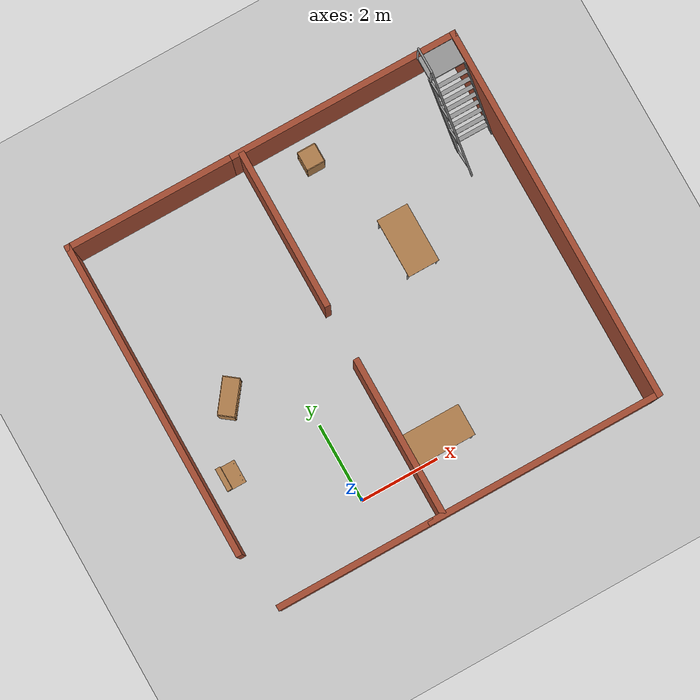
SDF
<sdf version="1.7">
 <world name="default">
  <light name="sun" type="directional">
   <pose>0 0 10 0 -0 0</pose>
   <diffuse>0.8 0.8 0.8 1</diffuse>
   <specular>0.2 0.2 0.2 1</specular>
   <attenuation>
    <range>1000</range>
    <constant>0.9</constant>
    <linear>0.01</linear>
    <quadratic>0.001</quadratic>
   </attenuation>
   <direction>-0.5 0.1 -0.9</direction>
   <spot><inner_angle>0</inner_angle><outer_angle>0</outer_angle><falloff>0</falloff></spot>
  </light>
  <model name="ground_plane">
   <static>1</static>
   <link name="link">
    <collision name="collision">
     <geometry><plane><normal>0 0 1</normal><size>100 100</size></plane></geometry>
     <surface>
      <contact><collide_bitmask>65535</collide_bitmask></contact>
      <friction><ode><mu>100</mu><mu2>50</mu2></ode></friction>
     </surface>
    </collision>
    <visual name="visual">
     <cast_shadows>0</cast_shadows>
     <geometry><plane><normal>0 0 1</normal><size>100 100</size></plane></geometry>
     <material>
      <script><uri>file://media/materials/scripts/gazebo.material</uri><name>Gazebo/Grey</name></script>
     </material>
    </visual>
   </link>
  </model>
  <gravity>0 0 -9.8</gravity>
  <magnetic_field>6e-06 2.3e-05 -4.2e-05</magnetic_field>
  <atmosphere type="adiabatic"/>
  <physics type="ode">
   <max_step_size>0.001</max_step_size>
   <real_time_factor>1</real_time_factor>
   <real_time_update_rate>1000</real_time_update_rate>
  </physics>
  <scene><ambient>0.4 0.4 0.4 1</ambient><background>0.7 0.7 0.7 1</background><shadows>1</shadows></scene>
  <spherical_coordinates>
   <surface_model>EARTH_WGS84</surface_model>
   <latitude_deg>0</latitude_deg>
   <longitude_deg>0</longitude_deg>
   <elevation>0</elevation>
   <heading_deg>0</heading_deg>
  </spherical_coordinates>
  <model name="base">
   <pose>1.955 3.445 0 0 -0 0</pose>
   <link name="Wall_10">
    <collision name="Wall_10_Collision">
     <geometry><box><size>6 0.15 2.5</size></box></geometry>
     <pose>0 0 1.25 0 -0 0</pose>
    </collision>
    <visual name="Wall_10_Visual">
     <pose>0 0 1.25 0 -0 0</pose>
     <geometry><box><size>6 0.15 2.5</size></box></geometry>
     <material>
      <script><uri>file://media/materials/scripts/gazebo.material</uri><name>Gazebo/Bricks</name></script>
      <ambient>1 1 1 1</ambient>
     </material>
     <meta><layer>0</layer></meta>
    </visual>
    <pose>2.05 -4.675 0 0 -0 0</pose>
   </link>
   <link name="Wall_11">
    <collision name="Wall_11_Collision">
     <geometry><box><size>9.5 0.15 2.5</size></box></geometry>
     <pose>0 0 1.25 0 -0 0</pose>
    </collision>
    <visual name="Wall_11_Visual">
     <pose>0 0 1.25 0 -0 0</pose>
     <geometry><box><size>9.5 0.15 2.5</size></box></geometry>
     <material>
      <script><uri>file://media/materials/scripts/gazebo.material</uri><name>Gazebo/Bricks</name></script>
      <ambient>1 1 1 1</ambient>
     </material>
     <meta><layer>0</layer></meta>
    </visual>
    <pose>4.975 -0 0 0 -0 1.5708</pose>
   </link>
   <link name="Wall_12">
    <collision name="Wall_12_Collision">
     <geometry><box><size>6 0.15 2.5</size></box></geometry>
     <pose>0 0 1.25 0 -0 0</pose>
    </collision>
    <visual name="Wall_12_Visual">
     <pose>0 0 1.25 0 -0 0</pose>
     <geometry><box><size>6 0.15 2.5</size></box></geometry>
     <material>
      <script><uri>file://media/materials/scripts/gazebo.material</uri><name>Gazebo/Bricks</name></script>
      <ambient>1 1 1 1</ambient>
     </material>
     <meta><layer>0</layer></meta>
    </visual>
    <pose>2.05 4.675 0 0 -0 3.14159</pose>
   </link>
   <link name="Wall_14">
    <collision name="Wall_14_Collision">
     <geometry><box><size>4.25 0.15 2.5</size></box></geometry>
     <pose>0 0 1.25 0 -0 0</pose>
    </collision>
    <visual name="Wall_14_Visual">
     <pose>0 0 1.25 0 -0 0</pose>
     <geometry><box><size>4.25 0.15 2.5</size></box></geometry>
     <material>
      <script><uri>file://media/materials/scripts/gazebo.material</uri><name>Gazebo/Bricks</name></script>
      <ambient>1 1 1 1</ambient>
     </material>
     <meta><layer>0</layer></meta>
    </visual>
    <pose>-2.925 4.675 0 0 -0 3.14159</pose>
   </link>
   <link name="Wall_15">
    <collision name="Wall_15_Collision">
     <geometry><box><size>8 0.15 2.5</size></box></geometry>
     <pose>0 0 1.25 0 -0 0</pose>
    </collision>
    <visual name="Wall_15_Visual">
     <pose>0 0 1.25 0 -0 0</pose>
     <geometry><box><size>8 0.15 2.5</size></box></geometry>
     <material>
      <script><uri>file://media/materials/scripts/gazebo.material</uri><name>Gazebo/Bricks</name></script>
      <ambient>1 1 1 1</ambient>
     </material>
     <meta><layer>0</layer></meta>
    </visual>
    <pose>-4.975 0.75 0 0 -0 -1.5708</pose>
   </link>
   <link name="Wall_17">
    <collision name="Wall_17_Collision">
     <geometry><box><size>4 0.15 2.5</size></box></geometry>
     <pose>0 0 1.25 0 -0 0</pose>
    </collision>
    <visual name="Wall_17_Visual">
     <pose>0 0 1.25 0 -0 0</pose>
     <geometry><box><size>4 0.15 2.5</size></box></geometry>
     <material>
      <script><uri>file://media/materials/scripts/gazebo.material</uri><name>Gazebo/Bricks</name></script>
      <ambient>1 1 1 1</ambient>
     </material>
     <meta><layer>0</layer></meta>
    </visual>
    <pose>-0.5297 2.66568 0 0 -0 1.5708</pose>
   </link>
   <link name="Wall_5">
    <collision name="Wall_5_Collision">
     <geometry><box><size>4 0.15 2.5</size></box></geometry>
     <pose>0 0 1.25 0 -0 0</pose>
    </collision>
    <visual name="Wall_5_Visual">
     <pose>0 0 1.25 0 -0 0</pose>
     <geometry><box><size>4 0.15 2.5</size></box></geometry>
     <material>
      <script><uri>file://media/materials/scripts/gazebo.material</uri><name>Gazebo/Bricks</name></script>
      <ambient>1 1 1 1</ambient>
     </material>
     <meta><layer>0</layer></meta>
    </visual>
    <pose>-2.8 -4.675 0 0 -0 3.14159</pose>
   </link>
   <link name="Wall_8">
    <collision name="Wall_8_Collision">
     <geometry><box><size>4 0.15 2.5</size></box></geometry>
     <pose>0 0 1.25 0 -0 0</pose>
    </collision>
    <visual name="Wall_8_Visual">
     <pose>0 0 1.25 0 -0 0</pose>
     <geometry><box><size>4 0.15 2.5</size></box></geometry>
     <material>
      <script><uri>file://media/materials/scripts/gazebo.material</uri><name>Gazebo/Bricks</name></script>
      <ambient>1 1 1 1</ambient>
     </material>
     <meta><layer>0</layer></meta>
    </visual>
    <pose>-0.5527 -2.67032 0 0 -0 1.5708</pose>
   </link>
   <static>1</static>
  </model>
  <model name="cabinet">
   <static>1</static>
   <link name="cabinet_bottom_plate">
    <inertial>
     <pose>0 0 -1 0 -0 0</pose>
     <inertia><ixx>2.05</ixx><ixy>0</ixy><ixz>0</ixz><iyy>2.05</iyy><iyz>0</iyz><izz>2.05</izz></inertia>
     <mass>25</mass>
    </inertial>
    <collision name="cabinet_bottom_plate_geom">
     <pose>0 0 0.01 0 -0 0</pose>
     <geometry><box><size>0.45 0.45 0.02</size></box></geometry>
    </collision>
    <visual name="cabinet_bottom_plate_geom_visual">
     <pose>0 0 0.01 0 -0 0</pose>
     <geometry><box><size>0.45 0.45 0.02</size></box></geometry>
     <material>
      <script><uri>file://media/materials/scripts/gazebo.material</uri><name>Gazebo/Wood</name></script>
     </material>
    </visual>
    <collision name="cabinet_bottom_plate_geom_cabinet_back_plate">
     <pose>0.235 0 0.51 0 -0 0</pose>
     <geometry><box><size>0.02 0.45 1.02</size></box></geometry>
    </collision>
    <visual name="cabinet_bottom_plate_geom_cabinet_back_plate_visual">
     <pose>0.235 0 0.51 0 -0 0</pose>
     <geometry><box><size>0.02 0.45 1.02</size></box></geometry>
     <material>
      <script><uri>file://media/materials/scripts/gazebo.material</uri><name>Gazebo/Wood</name></script>
     </material>
    </visual>
    <collision name="cabinet_bottom_plate_geom_cabinet_left_plate">
     <pose>0 0.235 0.51 0 -0 0</pose>
     <geometry><box><size>0.45 0.02 1.02</size></box></geometry>
    </collision>
    <visual name="cabinet_bottom_plate_geom_cabinet_left_plate_visual">
     <pose>0 0.235 0.51 0 -0 0</pose>
     <geometry><box><size>0.45 0.02 1.02</size></box></geometry>
     <material>
      <script><uri>file://media/materials/scripts/gazebo.material</uri><name>Gazebo/Wood</name></script>
     </material>
    </visual>
    <collision name="cabinet_bottom_plate_geom_cabinet_middle_plate">
     <pose>0 0 0.51 0 -0 0</pose>
     <geometry><box><size>0.45 0.45 0.02</size></box></geometry>
    </collision>
    <visual name="cabinet_bottom_plate_geom_cabinet_middle_plate_visual">
     <pose>0 0 0.51 0 -0 0</pose>
     <geometry><box><size>0.45 0.45 0.02</size></box></geometry>
     <material>
      <script><uri>file://media/materials/scripts/gazebo.material</uri><name>Gazebo/Wood</name></script>
     </material>
    </visual>
    <collision name="cabinet_bottom_plate_geom_cabinet_right_plate">
     <pose>0 -0.235 0.51 0 -0 0</pose>
     <geometry><box><size>0.45 0.02 1.02</size></box></geometry>
    </collision>
    <visual name="cabinet_bottom_plate_geom_cabinet_right_plate_visual">
     <pose>0 -0.235 0.51 0 -0 0</pose>
     <geometry><box><size>0.45 0.02 1.02</size></box></geometry>
     <material>
      <script><uri>file://media/materials/scripts/gazebo.material</uri><name>Gazebo/Wood</name></script>
     </material>
    </visual>
    <collision name="cabinet_bottom_plate_geom_cabinet_top_plate">
     <pose>0 0 1.01 0 -0 0</pose>
     <geometry><box><size>0.45 0.45 0.02</size></box></geometry>
    </collision>
    <visual name="cabinet_bottom_plate_geom_cabinet_top_plate_visual">
     <pose>0 0 1.01 0 -0 0</pose>
     <geometry><box><size>0.45 0.45 0.02</size></box></geometry>
     <material>
      <script><uri>file://media/materials/scripts/gazebo.material</uri><name>Gazebo/Wood</name></script>
     </material>
    </visual>
   </link>
   <pose>2.82724 7.44683 0 0 -0 0</pose>
  </model>
  <model name="wooden_case">
   <link name="base">
    <pose>0 0 0.024 0 -0 0</pose>
    <inertial>
     <pose>-0.022184 0 0.171592 0 -0 0</pose>
     <mass>3.96264</mass>
     <inertia>
      <ixx>0.213536</ixx>
      <ixy>0</ixy>
      <ixz>0.000779377</ixz>
      <iyy>0.0708943</iyy>
      <iyz>0</iyz>
      <izz>0.154604</izz>
     </inertia>
    </inertial>
    <collision name="collision_back">
     <pose>-0.053975 0 0.1778 0 -0 0</pose>
     <geometry><box><size>0.01905 0.5461 0.3175</size></box></geometry>
     <surface>
      <contact>
       <poissons_ratio>0.347</poissons_ratio>
       <elastic_modulus>8.8e+09</elastic_modulus>
       <ode><kp>100000</kp><kd>100</kd><max_vel>100</max_vel><min_depth>0.001</min_depth></ode>
      </contact>
      <friction>
       <torsional>
        <coefficient>1</coefficient>
        <use_patch_radius>0</use_patch_radius>
        <surface_radius>0.01</surface_radius>
       </torsional>
      </friction>
     </surface>
    </collision>
    <visual name="visual_back">
     <pose>-0.053975 0 0.1778 0 -0 0</pose>
     <geometry><box><size>0.01905 0.5461 0.3175</size></box></geometry>
     <material>
      <script><uri>file://media/materials/scripts/gazebo.material</uri><name>Gazebo/Wood</name></script>
     </material>
    </visual>
    <collision name="collision_bottom">
     <pose>0 0 0.009525 0 -0 0</pose>
     <geometry><box><size>0.127 0.5842 0.01905</size></box></geometry>
     <surface>
      <contact>
       <poissons_ratio>0.347</poissons_ratio>
       <elastic_modulus>8.8e+09</elastic_modulus>
       <ode><kp>100000</kp><kd>100</kd><max_vel>100</max_vel><min_depth>0.001</min_depth></ode>
      </contact>
      <friction>
       <torsional>
        <coefficient>1</coefficient>
        <use_patch_radius>0</use_patch_radius>
        <surface_radius>0.01</surface_radius>
       </torsional>
      </friction>
     </surface>
    </collision>
    <visual name="visual_bottom">
     <pose>0 0 0.009525 0 -0 0</pose>
     <geometry><box><size>0.127 0.5842 0.01905</size></box></geometry>
     <material>
      <script><uri>file://media/materials/scripts/gazebo.material</uri><name>Gazebo/Wood</name></script>
     </material>
    </visual>
    <collision name="collision_top">
     <pose>0 0 0.346075 0 -0 0</pose>
     <geometry><box><size>0.127 0.5842 0.01905</size></box></geometry>
     <surface>
      <contact>
       <poissons_ratio>0.347</poissons_ratio>
       <elastic_modulus>8.8e+09</elastic_modulus>
       <ode><kp>100000</kp><kd>100</kd><max_vel>100</max_vel><min_depth>0.001</min_depth></ode>
      </contact>
      <friction>
       <torsional>
        <coefficient>1</coefficient>
        <use_patch_radius>0</use_patch_radius>
        <surface_radius>0.01</surface_radius>
       </torsional>
      </friction>
     </surface>
    </collision>
    <visual name="visual_top">
     <pose>0 0 0.346075 0 -0 0</pose>
     <geometry><box><size>0.127 0.5842 0.01905</size></box></geometry>
     <material>
      <script><uri>file://media/materials/scripts/gazebo.material</uri><name>Gazebo/Wood</name></script>
     </material>
    </visual>
    <collision name="collision_left">
     <pose>0 -0.282575 0.1778 0 -0 0</pose>
     <geometry><box><size>0.127 0.01905 0.3175</size></box></geometry>
     <surface>
      <contact>
       <poissons_ratio>0.347</poissons_ratio>
       <elastic_modulus>8.8e+09</elastic_modulus>
       <ode><kp>100000</kp><kd>100</kd><max_vel>100</max_vel><min_depth>0.001</min_depth></ode>
      </contact>
      <friction>
       <torsional>
        <coefficient>1</coefficient>
        <use_patch_radius>0</use_patch_radius>
        <surface_radius>0.01</surface_radius>
       </torsional>
      </friction>
     </surface>
    </collision>
    <visual name="visual_left">
     <pose>0 -0.282575 0.1778 0 -0 0</pose>
     <geometry><box><size>0.127 0.01905 0.3175</size></box></geometry>
     <material>
      <script><uri>file://media/materials/scripts/gazebo.material</uri><name>Gazebo/Wood</name></script>
     </material>
    </visual>
    <collision name="collision_right">
     <pose>0 0.282575 0.1778 0 -0 0</pose>
     <geometry><box><size>0.127 0.01905 0.3175</size></box></geometry>
     <surface>
      <contact>
       <poissons_ratio>0.347</poissons_ratio>
       <elastic_modulus>8.8e+09</elastic_modulus>
       <ode><kp>100000</kp><kd>100</kd><max_vel>100</max_vel><min_depth>0.001</min_depth></ode>
      </contact>
      <friction>
       <torsional>
        <coefficient>1</coefficient>
        <use_patch_radius>0</use_patch_radius>
        <surface_radius>0.01</surface_radius>
       </torsional>
      </friction>
     </surface>
    </collision>
    <visual name="visual_right">
     <pose>0 0.282575 0.1778 0 -0 0</pose>
     <geometry><box><size>0.127 0.01905 0.3175</size></box></geometry>
     <material>
      <script><uri>file://media/materials/scripts/gazebo.material</uri><name>Gazebo/Wood</name></script>
     </material>
    </visual>
    <collision name="collision_block_left">
     <pose>0.0095 -0.2151 -0.012 0 -0 0</pose>
     <geometry><box><size>0.108 0.05 0.024</size></box></geometry>
     <surface>
      <contact>
       <poissons_ratio>0.347</poissons_ratio>
       <elastic_modulus>8.8e+09</elastic_modulus>
       <ode><kp>100000</kp><kd>100</kd><max_vel>100</max_vel><min_depth>0.001</min_depth></ode>
      </contact>
      <friction>
       <torsional>
        <coefficient>1</coefficient>
        <use_patch_radius>0</use_patch_radius>
        <surface_radius>0.01</surface_radius>
       </torsional>
      </friction>
     </surface>
    </collision>
    <visual name="visual_block_left">
     <pose>0.0095 -0.2151 -0.012 0 -0 0</pose>
     <geometry><box><size>0.108 0.05 0.024</size></box></geometry>
     <material>
      <script><uri>file://media/materials/scripts/gazebo.material</uri><name>Gazebo/Wood</name></script>
     </material>
    </visual>
    <collision name="collision_block_right">
     <pose>0.0095 0.2151 -0.012 0 -0 0</pose>
     <geometry><box><size>0.108 0.05 0.024</size></box></geometry>
     <surface>
      <contact>
       <poissons_ratio>0.347</poissons_ratio>
       <elastic_modulus>8.8e+09</elastic_modulus>
       <ode><kp>100000</kp><kd>100</kd><max_vel>100</max_vel><min_depth>0.001</min_depth></ode>
      </contact>
      <friction>
       <torsional>
        <coefficient>1</coefficient>
        <use_patch_radius>0</use_patch_radius>
        <surface_radius>0.01</surface_radius>
       </torsional>
      </friction>
     </surface>
    </collision>
    <visual name="visual_block_right">
     <pose>0.0095 0.2151 -0.012 0 -0 0</pose>
     <geometry><box><size>0.108 0.05 0.024</size></box></geometry>
     <material>
      <script><uri>file://media/materials/scripts/gazebo.material</uri><name>Gazebo/Wood</name></script>
     </material>
    </visual>
   </link>
   <link name="lid">
    <pose>0.243775 0 0.009525 0 -0 0</pose>
    <inertial>
     <mass>1.97874</mass>
     <inertia>
      <ixx>0.0563367</ixx>
      <ixy>0</ixy>
      <ixz>0</ixz>
      <iyy>0.020911</iyy>
      <iyz>0</iyz>
      <izz>0.0771281</izz>
     </inertia>
    </inertial>
    <collision name="collision">
     <geometry><box><size>0.3556 0.5842 0.01905</size></box></geometry>
     <surface>
      <contact>
       <poissons_ratio>0.347</poissons_ratio>
       <elastic_modulus>8.8e+09</elastic_modulus>
       <ode><kp>100000</kp><kd>100</kd><max_vel>100</max_vel><min_depth>0.001</min_depth></ode>
      </contact>
      <friction>
       <torsional>
        <coefficient>1</coefficient>
        <use_patch_radius>0</use_patch_radius>
        <surface_radius>0.01</surface_radius>
       </torsional>
      </friction>
     </surface>
    </collision>
    <visual name="visual">
     <geometry><box><size>0.3556 0.5842 0.01905</size></box></geometry>
     <material>
      <script><uri>file://media/materials/scripts/gazebo.material</uri><name>Gazebo/Wood</name></script>
     </material>
    </visual>
    <visual name="tee_nut_1">
     <pose>0.122 -0.216 0 0 -0 0</pose>
     <geometry><cylinder><radius>0.00635</radius><length>0.0192405</length></cylinder></geometry>
     <material>
      <script><uri>file://media/materials/scripts/gazebo.material</uri><name>Gazebo/Grey</name></script>
     </material>
    </visual>
    <visual name="tee_nut_2">
     <pose>0.122 -0.088 0 0 -0 0</pose>
     <geometry><cylinder><radius>0.00635</radius><length>0.0192405</length></cylinder></geometry>
     <material>
      <script><uri>file://media/materials/scripts/gazebo.material</uri><name>Gazebo/Grey</name></script>
     </material>
    </visual>
    <visual name="tee_nut_3">
     <pose>0.122 0.088 0 0 -0 0</pose>
     <geometry><cylinder><radius>0.00635</radius><length>0.0192405</length></cylinder></geometry>
     <material>
      <script><uri>file://media/materials/scripts/gazebo.material</uri><name>Gazebo/Grey</name></script>
     </material>
    </visual>
    <visual name="tee_nut_4">
     <pose>0.122 0.216 0 0 -0 0</pose>
     <geometry><cylinder><radius>0.00635</radius><length>0.0192405</length></cylinder></geometry>
     <material>
      <script><uri>file://media/materials/scripts/gazebo.material</uri><name>Gazebo/Grey</name></script>
     </material>
    </visual>
   </link>
   <joint name="lid_hinge" type="revolute">
    <pose>-0.1778 0 0.01905 0 -0 0</pose>
    <parent>base</parent>
    <child>lid</child>
    <axis>
     <xyz>0 1 0</xyz>
     <limit><upper>0.523599</upper><lower>-1.5708</lower></limit>
     <dynamics><spring_reference>0</spring_reference><spring_stiffness>0</spring_stiffness></dynamics>
    </axis>
   </joint>
   <pose>-2.53437 1.98393 -0.001057 0 -0.000429 0</pose>
  </model>
  <model name="bookshelf">
   <static>1</static>
   <link name="link">
    <inertial><mass>1</mass></inertial>
    <collision name="back">
     <pose>0 0.005 0.6 0 -0 0</pose>
     <geometry><box><size>0.9 0.01 1.2</size></box></geometry>
    </collision>
    <visual name="visual1">
     <pose>0 0.005 0.6 0 -0 0</pose>
     <geometry><box><size>0.9 0.01 1.2</size></box></geometry>
     <material>
      <script><uri>file://media/materials/scripts/gazebo.material</uri><name>Gazebo/Wood</name></script>
     </material>
    </visual>
    <collision name="left_side">
     <pose>0.45 -0.195 0.6 0 -0 0</pose>
     <geometry><box><size>0.02 0.4 1.2</size></box></geometry>
    </collision>
    <visual name="visual2">
     <pose>0.45 -0.195 0.6 0 -0 0</pose>
     <geometry><box><size>0.02 0.4 1.2</size></box></geometry>
     <material>
      <script><uri>file://media/materials/scripts/gazebo.material</uri><name>Gazebo/Wood</name></script>
     </material>
    </visual>
    <collision name="right_side">
     <pose>-0.45 -0.195 0.6 0 -0 0</pose>
     <geometry><box><size>0.02 0.4 1.2</size></box></geometry>
    </collision>
    <visual name="visual3">
     <pose>-0.45 -0.195 0.6 0 -0 0</pose>
     <geometry><box><size>0.02 0.4 1.2</size></box></geometry>
     <material>
      <script><uri>file://media/materials/scripts/gazebo.material</uri><name>Gazebo/Wood</name></script>
     </material>
    </visual>
    <collision name="bottom">
     <pose>0 -0.195 0.03 0 -0 0</pose>
     <geometry><box><size>0.88 0.4 0.06</size></box></geometry>
    </collision>
    <visual name="visual4">
     <pose>0 -0.195 0.03 0 -0 0</pose>
     <geometry><box><size>0.88 0.4 0.06</size></box></geometry>
     <material>
      <script><uri>file://media/materials/scripts/gazebo.material</uri><name>Gazebo/Wood</name></script>
     </material>
    </visual>
    <collision name="top">
     <pose>0 -0.195 1.19 0 -0 0</pose>
     <geometry><box><size>0.88 0.4 0.02</size></box></geometry>
    </collision>
    <visual name="visual5">
     <pose>0 -0.195 1.19 0 -0 0</pose>
     <geometry><box><size>0.88 0.4 0.02</size></box></geometry>
     <material>
      <script><uri>file://media/materials/scripts/gazebo.material</uri><name>Gazebo/Wood</name></script>
     </material>
    </visual>
    <collision name="low_shelf">
     <pose>0 -0.195 0.43 0 -0 0</pose>
     <geometry><box><size>0.88 0.4 0.02</size></box></geometry>
    </collision>
    <visual name="visual6">
     <pose>0 -0.195 0.43 0 -0 0</pose>
     <geometry><box><size>0.88 0.4 0.02</size></box></geometry>
     <material>
      <script><uri>file://media/materials/scripts/gazebo.material</uri><name>Gazebo/Wood</name></script>
     </material>
    </visual>
    <collision name="high_shelf">
     <pose>0 -0.195 0.8 0 -0 0</pose>
     <geometry><box><size>0.88 0.4 0.02</size></box></geometry>
    </collision>
    <visual name="visual7">
     <pose>0 -0.195 0.8 0 -0 0</pose>
     <geometry><box><size>0.88 0.4 0.02</size></box></geometry>
     <material>
      <script><uri>file://media/materials/scripts/gazebo.material</uri><name>Gazebo/Wood</name></script>
     </material>
    </visual>
   </link>
   <pose>-1.66294 3.64349 0 0 -0 0.923893</pose>
  </model>
  <model name="ladder_60deg_1rails">
   <static>1</static>
   <link name="step0">
    <pose>0 0.15396 0.266667 0 -0 0</pose>
    <inertial>
     <mass>9.75482</mass>
     <inertia>
      <ixx>0.00957124</ixx>
      <iyy>0.65963</iyy>
      <izz>0.666842</izz>
      <ixy>0</ixy>
      <ixz>0</ixz>
      <iyz>0</iyz>
     </inertia>
    </inertial>
    <collision name="collision"><geometry><box><size>0.9 0.1016 0.0381</size></box></geometry></collision>
    <visual name="visual">
     <geometry><box><size>0.9 0.1016 0.0381</size></box></geometry>
     <material>
      <script><uri>file://media/materials/scripts/gazebo.material</uri><name>Gazebo/Grey</name></script>
     </material>
    </visual>
   </link>
   <link name="step1">
    <pose>0 0.30792 0.533333 0 -0 0</pose>
    <inertial>
     <mass>9.75482</mass>
     <inertia>
      <ixx>0.00957124</ixx>
      <iyy>0.65963</iyy>
      <izz>0.666842</izz>
      <ixy>0</ixy>
      <ixz>0</ixz>
      <iyz>0</iyz>
     </inertia>
    </inertial>
    <collision name="collision"><geometry><box><size>0.9 0.1016 0.0381</size></box></geometry></collision>
    <visual name="visual">
     <geometry><box><size>0.9 0.1016 0.0381</size></box></geometry>
     <material>
      <script><uri>file://media/materials/scripts/gazebo.material</uri><name>Gazebo/Grey</name></script>
     </material>
    </visual>
   </link>
   <link name="step2">
    <pose>0 0.46188 0.8 0 -0 0</pose>
    <inertial>
     <mass>9.75482</mass>
     <inertia>
      <ixx>0.00957124</ixx>
      <iyy>0.65963</iyy>
      <izz>0.666842</izz>
      <ixy>0</ixy>
      <ixz>0</ixz>
      <iyz>0</iyz>
     </inertia>
    </inertial>
    <collision name="collision"><geometry><box><size>0.9 0.1016 0.0381</size></box></geometry></collision>
    <visual name="visual">
     <geometry><box><size>0.9 0.1016 0.0381</size></box></geometry>
     <material>
      <script><uri>file://media/materials/scripts/gazebo.material</uri><name>Gazebo/Grey</name></script>
     </material>
    </visual>
   </link>
   <link name="step3">
    <pose>0 0.61584 1.06667 0 -0 0</pose>
    <inertial>
     <mass>9.75482</mass>
     <inertia>
      <ixx>0.00957124</ixx>
      <iyy>0.65963</iyy>
      <izz>0.666842</izz>
      <ixy>0</ixy>
      <ixz>0</ixz>
      <iyz>0</iyz>
     </inertia>
    </inertial>
    <collision name="collision"><geometry><box><size>0.9 0.1016 0.0381</size></box></geometry></collision>
    <visual name="visual">
     <geometry><box><size>0.9 0.1016 0.0381</size></box></geometry>
     <material>
      <script><uri>file://media/materials/scripts/gazebo.material</uri><name>Gazebo/Grey</name></script>
     </material>
    </visual>
   </link>
   <link name="step4">
    <pose>0 0.7698 1.33333 0 -0 0</pose>
    <inertial>
     <mass>9.75482</mass>
     <inertia>
      <ixx>0.00957124</ixx>
      <iyy>0.65963</iyy>
      <izz>0.666842</izz>
      <ixy>0</ixy>
      <ixz>0</ixz>
      <iyz>0</iyz>
     </inertia>
    </inertial>
    <collision name="collision"><geometry><box><size>0.9 0.1016 0.0381</size></box></geometry></collision>
    <visual name="visual">
     <geometry><box><size>0.9 0.1016 0.0381</size></box></geometry>
     <material>
      <script><uri>file://media/materials/scripts/gazebo.material</uri><name>Gazebo/Grey</name></script>
     </material>
    </visual>
   </link>
   <link name="step5">
    <pose>0 0.92376 1.6 0 -0 0</pose>
    <inertial>
     <mass>9.75482</mass>
     <inertia>
      <ixx>0.00957124</ixx>
      <iyy>0.65963</iyy>
      <izz>0.666842</izz>
      <ixy>0</ixy>
      <ixz>0</ixz>
      <iyz>0</iyz>
     </inertia>
    </inertial>
    <collision name="collision"><geometry><box><size>0.9 0.1016 0.0381</size></box></geometry></collision>
    <visual name="visual">
     <geometry><box><size>0.9 0.1016 0.0381</size></box></geometry>
     <material>
      <script><uri>file://media/materials/scripts/gazebo.material</uri><name>Gazebo/Grey</name></script>
     </material>
    </visual>
   </link>
   <link name="step6">
    <pose>0 1.07772 1.86667 0 -0 0</pose>
    <inertial>
     <mass>9.75482</mass>
     <inertia>
      <ixx>0.00957124</ixx>
      <iyy>0.65963</iyy>
      <izz>0.666842</izz>
      <ixy>0</ixy>
      <ixz>0</ixz>
      <iyz>0</iyz>
     </inertia>
    </inertial>
    <collision name="collision"><geometry><box><size>0.9 0.1016 0.0381</size></box></geometry></collision>
    <visual name="visual">
     <geometry><box><size>0.9 0.1016 0.0381</size></box></geometry>
     <material>
      <script><uri>file://media/materials/scripts/gazebo.material</uri><name>Gazebo/Grey</name></script>
     </material>
    </visual>
   </link>
   <link name="step7">
    <pose>0 1.23168 2.13333 0 -0 0</pose>
    <inertial>
     <mass>9.75482</mass>
     <inertia>
      <ixx>0.00957124</ixx>
      <iyy>0.65963</iyy>
      <izz>0.666842</izz>
      <ixy>0</ixy>
      <ixz>0</ixz>
      <iyz>0</iyz>
     </inertia>
    </inertial>
    <collision name="collision"><geometry><box><size>0.9 0.1016 0.0381</size></box></geometry></collision>
    <visual name="visual">
     <geometry><box><size>0.9 0.1016 0.0381</size></box></geometry>
     <material>
      <script><uri>file://media/materials/scripts/gazebo.material</uri><name>Gazebo/Grey</name></script>
     </material>
    </visual>
   </link>
   <link name="landing">
    <pose>0 1.68564 2.4 0 -0 0</pose>
    <inertial>
     <mass>57.6072</mass>
     <inertia><ixx>1.73518</ixx><iyy>3.89545</iyy><izz>5.6167</izz><ixy>0</ixy><ixz>0</ixz><iyz>0</iyz></inertia>
    </inertial>
    <collision name="collision"><geometry><box><size>0.9 0.6 0.1016</size></box></geometry></collision>
    <visual name="visual">
     <geometry><box><size>0.9 0.6 0.1016</size></box></geometry>
     <material>
      <script><uri>file://media/materials/scripts/gazebo.material</uri><name>Gazebo/Grey</name></script>
     </material>
    </visual>
   </link>
   <link name="left_side_wall">
    <pose>-0.45 0.69282 1.2 1.0472 -0 0</pose>
    <collision name="collision"><geometry><box><size>0.0508 2.85128 0.13</size></box></geometry></collision>
    <visual name="visual">
     <geometry><box><size>0.0508 2.85128 0.13</size></box></geometry>
     <material>
      <script><uri>file://media/materials/scripts/gazebo.material</uri><name>Gazebo/Grey</name></script>
     </material>
    </visual>
   </link>
   <link name="right_side_wall">
    <pose>0.45 0.69282 1.2 1.0472 -0 0</pose>
    <collision name="collision"><geometry><box><size>0.0508 2.85128 0.13</size></box></geometry></collision>
    <visual name="visual">
     <geometry><box><size>0.0508 2.85128 0.13</size></box></geometry>
     <material>
      <script><uri>file://media/materials/scripts/gazebo.material</uri><name>Gazebo/Grey</name></script>
     </material>
    </visual>
   </link>
   <link name="left_railing_long">
    <pose>-0.45 0.34282 1.80622 -0.523599 0 0</pose>
    <collision name="collision">
     <geometry><cylinder><radius>0.02413</radius><length>4.17128</length></cylinder></geometry>
    </collision>
    <visual name="visual">
     <geometry><cylinder><radius>0.02413</radius><length>4.17128</length></cylinder></geometry>
     <material>
      <script><uri>file://media/materials/scripts/gazebo.material</uri><name>Gazebo/Grey</name></script>
     </material>
    </visual>
   </link>
   <link name="left_railing_upright0">
    <pose>-0.45 -0.274963 0.15875 1.0472 -0 0</pose>
    <collision name="collision">
     <geometry><cylinder><radius>0.02413</radius><length>0.541218</length></cylinder></geometry>
    </collision>
    <visual name="visual">
     <geometry><cylinder><radius>0.02413</radius><length>0.541218</length></cylinder></geometry>
     <material>
      <script><uri>file://media/materials/scripts/gazebo.material</uri><name>Gazebo/Grey</name></script>
     </material>
    </visual>
   </link>
   <link name="left_railing_upright1">
    <pose>-0.45 0.186917 0.95875 1.0472 -0 0</pose>
    <collision name="collision">
     <geometry><cylinder><radius>0.02413</radius><length>0.541218</length></cylinder></geometry>
    </collision>
    <visual name="visual">
     <geometry><cylinder><radius>0.02413</radius><length>0.541218</length></cylinder></geometry>
     <material>
      <script><uri>file://media/materials/scripts/gazebo.material</uri><name>Gazebo/Grey</name></script>
     </material>
    </visual>
   </link>
   <link name="left_railing_upright2">
    <pose>-0.45 0.648797 1.75875 1.0472 -0 0</pose>
    <collision name="collision">
     <geometry><cylinder><radius>0.02413</radius><length>0.541218</length></cylinder></geometry>
    </collision>
    <visual name="visual">
     <geometry><cylinder><radius>0.02413</radius><length>0.541218</length></cylinder></geometry>
     <material>
      <script><uri>file://media/materials/scripts/gazebo.material</uri><name>Gazebo/Grey</name></script>
     </material>
    </visual>
   </link>
   <link name="left_railing_upright3">
    <pose>-0.45 1.11068 2.55875 1.0472 -0 0</pose>
    <collision name="collision">
     <geometry><cylinder><radius>0.02413</radius><length>0.541218</length></cylinder></geometry>
    </collision>
    <visual name="visual">
     <geometry><cylinder><radius>0.02413</radius><length>0.541218</length></cylinder></geometry>
     <material>
      <script><uri>file://media/materials/scripts/gazebo.material</uri><name>Gazebo/Grey</name></script>
     </material>
    </visual>
   </link>
   <link name="left_railing_landing_top">
    <pose>-0.45 1.68564 3.61244 1.5708 -0 0</pose>
    <collision name="collision">
     <geometry><cylinder><radius>0.02413</radius><length>0.64826</length></cylinder></geometry>
    </collision>
    <visual name="visual">
     <geometry><cylinder><radius>0.02413</radius><length>0.64826</length></cylinder></geometry>
     <material>
      <script><uri>file://media/materials/scripts/gazebo.material</uri><name>Gazebo/Grey</name></script>
     </material>
    </visual>
   </link>
   <link name="left_railing_landing_upright_0">
    <pose>-0.45 1.38564 3.00622 0 -0 0</pose>
    <collision name="collision">
     <geometry><cylinder><radius>0.02413</radius><length>1.21244</length></cylinder></geometry>
    </collision>
    <visual name="visual">
     <geometry><cylinder><radius>0.02413</radius><length>1.21244</length></cylinder></geometry>
     <material>
      <script><uri>file://media/materials/scripts/gazebo.material</uri><name>Gazebo/Grey</name></script>
     </material>
    </visual>
   </link>
   <link name="left_railing_landing_upright_1">
    <pose>-0.45 1.98564 3.00622 0 -0 0</pose>
    <collision name="collision">
     <geometry><cylinder><radius>0.02413</radius><length>1.21244</length></cylinder></geometry>
    </collision>
    <visual name="visual">
     <geometry><cylinder><radius>0.02413</radius><length>1.21244</length></cylinder></geometry>
     <material>
      <script><uri>file://media/materials/scripts/gazebo.material</uri><name>Gazebo/Grey</name></script>
     </material>
    </visual>
   </link>
   <pose>6.40026 6.05748 0 0 -0 0</pose>
  </model>
  <model name="table">
   <static>1</static>
   <link name="link">
    <collision name="surface">
     <pose>0 0 1 0 -0 0</pose>
     <geometry><box><size>1.5 0.8 0.03</size></box></geometry>
     <surface><friction><ode><mu>0.6</mu><mu2>0.6</mu2></ode></friction></surface>
    </collision>
    <visual name="visual1">
     <pose>0 0 1 0 -0 0</pose>
     <geometry><box><size>1.5 0.8 0.03</size></box></geometry>
     <material>
      <script><uri>file://media/materials/scripts/gazebo.material</uri><name>Gazebo/Wood</name></script>
     </material>
    </visual>
    <collision name="front_left_leg">
     <pose>0.68 0.38 0.5 0 -0 0</pose>
     <geometry><cylinder><radius>0.02</radius><length>1</length></cylinder></geometry>
    </collision>
    <visual name="front_left_leg">
     <pose>0.68 0.38 0.5 0 -0 0</pose>
     <geometry><cylinder><radius>0.02</radius><length>1</length></cylinder></geometry>
     <material>
      <script><uri>file://media/materials/scripts/gazebo.material</uri><name>Gazebo/Grey</name></script>
     </material>
    </visual>
    <collision name="front_right_leg">
     <pose>0.68 -0.38 0.5 0 -0 0</pose>
     <geometry><cylinder><radius>0.02</radius><length>1</length></cylinder></geometry>
    </collision>
    <visual name="front_right_leg">
     <pose>0.68 -0.38 0.5 0 -0 0</pose>
     <geometry><cylinder><radius>0.02</radius><length>1</length></cylinder></geometry>
     <material>
      <script><uri>file://media/materials/scripts/gazebo.material</uri><name>Gazebo/Grey</name></script>
     </material>
    </visual>
    <collision name="back_right_leg">
     <pose>-0.68 -0.38 0.5 0 -0 0</pose>
     <geometry><cylinder><radius>0.02</radius><length>1</length></cylinder></geometry>
    </collision>
    <visual name="back_right_leg">
     <pose>-0.68 -0.38 0.5 0 -0 0</pose>
     <geometry><cylinder><radius>0.02</radius><length>1</length></cylinder></geometry>
     <material>
      <script><uri>file://media/materials/scripts/gazebo.material</uri><name>Gazebo/Grey</name></script>
     </material>
    </visual>
    <collision name="back_left_leg">
     <pose>-0.68 0.38 0.5 0 -0 0</pose>
     <geometry><cylinder><radius>0.02</radius><length>1</length></cylinder></geometry>
    </collision>
    <visual name="back_left_leg">
     <pose>-0.68 0.38 0.5 0 -0 0</pose>
     <geometry><cylinder><radius>0.02</radius><length>1</length></cylinder></geometry>
     <material>
      <script><uri>file://media/materials/scripts/gazebo.material</uri><name>Gazebo/Grey</name></script>
     </material>
    </visual>
   </link>
   <pose>2.23696 0.42613 0 0 -0 0</pose>
  </model>
  <model name="table_0">
   <static>1</static>
   <link name="link">
    <collision name="surface">
     <pose>0 0 1 0 -0 0</pose>
     <geometry><box><size>1.5 0.8 0.03</size></box></geometry>
     <surface><friction><ode><mu>0.6</mu><mu2>0.6</mu2></ode></friction></surface>
    </collision>
    <visual name="visual1">
     <pose>0 0 1 0 -0 0</pose>
     <geometry><box><size>1.5 0.8 0.03</size></box></geometry>
     <material>
      <script><uri>file://media/materials/scripts/gazebo.material</uri><name>Gazebo/Wood</name></script>
     </material>
    </visual>
    <collision name="front_left_leg">
     <pose>0.68 0.38 0.5 0 -0 0</pose>
     <geometry><cylinder><radius>0.02</radius><length>1</length></cylinder></geometry>
    </collision>
    <visual name="front_left_leg">
     <pose>0.68 0.38 0.5 0 -0 0</pose>
     <geometry><cylinder><radius>0.02</radius><length>1</length></cylinder></geometry>
     <material>
      <script><uri>file://media/materials/scripts/gazebo.material</uri><name>Gazebo/Grey</name></script>
     </material>
    </visual>
    <collision name="front_right_leg">
     <pose>0.68 -0.38 0.5 0 -0 0</pose>
     <geometry><cylinder><radius>0.02</radius><length>1</length></cylinder></geometry>
    </collision>
    <visual name="front_right_leg">
     <pose>0.68 -0.38 0.5 0 -0 0</pose>
     <geometry><cylinder><radius>0.02</radius><length>1</length></cylinder></geometry>
     <material>
      <script><uri>file://media/materials/scripts/gazebo.material</uri><name>Gazebo/Grey</name></script>
     </material>
    </visual>
    <collision name="back_right_leg">
     <pose>-0.68 -0.38 0.5 0 -0 0</pose>
     <geometry><cylinder><radius>0.02</radius><length>1</length></cylinder></geometry>
    </collision>
    <visual name="back_right_leg">
     <pose>-0.68 -0.38 0.5 0 -0 0</pose>
     <geometry><cylinder><radius>0.02</radius><length>1</length></cylinder></geometry>
     <material>
      <script><uri>file://media/materials/scripts/gazebo.material</uri><name>Gazebo/Grey</name></script>
     </material>
    </visual>
    <collision name="back_left_leg">
     <pose>-0.68 0.38 0.5 0 -0 0</pose>
     <geometry><cylinder><radius>0.02</radius><length>1</length></cylinder></geometry>
    </collision>
    <visual name="back_left_leg">
     <pose>-0.68 0.38 0.5 0 -0 0</pose>
     <geometry><cylinder><radius>0.02</radius><length>1</length></cylinder></geometry>
     <material>
      <script><uri>file://media/materials/scripts/gazebo.material</uri><name>Gazebo/Grey</name></script>
     </material>
    </visual>
   </link>
   <pose>3.83251 4.66848 0 0 -0 1.57244</pose>
  </model>
 </world>
</sdf>
